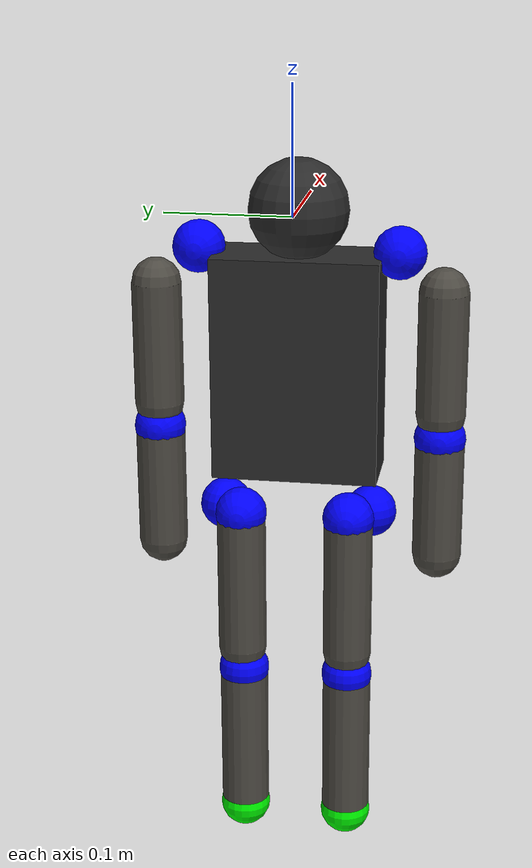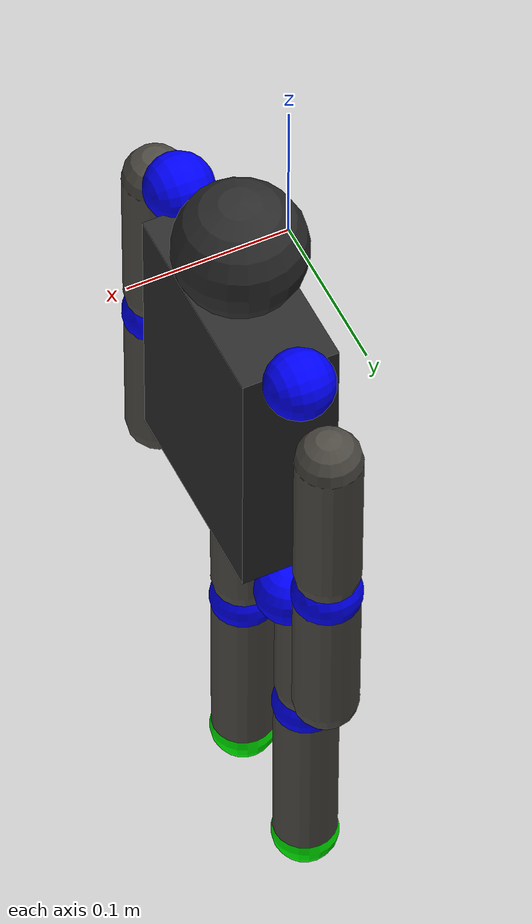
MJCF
<mujoco model="onshape">
  <compiler angle="radian"/>
  <worldbody>
    <!-- CUSTOM -->
    <body name="humanoid" pos="0 0 -0.175" quat="1 0 0 0">
      <joint solreflimit="4e-3 1" solimplimit=".95 .99 1e-3" range="-1.5708 1.5708" limited="true" name="humanoid_free" type="free"/>
      <!-- CUSTOM -->
      <body name="torso" pos="0 0 0" quat="1 0 0 0">
        <geom size="0.04" pos="0.03 0 0.175" quat="1 0 0 0" type="sphere" rgba="0.168627 0.168627 0.168627 1" contype="0"/>
        <geom size="0.0665 0.09 0.03" pos="0.03 0 0.05" quat="0.499998 0.5 0.500002 0.5" type="box" rgba="0.168627 0.168627 0.168627 1"/>
      </body>
      <body name="shoulder_right" pos="0.030869 -0.0795 0.143" quat="9.38184e-07 9.38187e-07 0.707108 0.707105">
        <inertial pos="0 -0.00566234 -0.0159676" quat="0.627076 0.326766 0.627076 0.326766" mass="0.0570101" diaginertia="4.46e-05 3.15943e-05 2.21758e-05"/>
        <joint solreflimit="4e-3 1" solimplimit=".95 .99 1e-3" range="-1.5708 1.5708" limited="true" name="right_shoulder_pitch" pos="0 0 0" axis="0 0 1"/>
        <joint solreflimit="4e-3 1" solimplimit=".95 .99 1e-3" range="-0.785398 0.785398" limited="true" name="right_shoulder_roll" pos="0 0 0" axis="-1 0 0"/>
        <geom size="0.021" pos="0 0 0" quat="0.5 0.5 0.5 0.5" type="sphere" rgba="0 0 1 1" contype="0"/>
        <body name="bicep_right" pos="-0.0235 -0.03 -0.035" quat="0.707105 0 -0.707108 0">
          <inertial pos="-0.0219502 0.0714677 -0.0108756" quat="0.656406 0.694267 0.257251 -0.144731" mass="0.111948" diaginertia="0.0135499 0.013546 4.41839e-05"/>
          <geom size="0.02 0.05" pos="0 -0.05 -0.025" quat="0.5 0.5 -0.5 0.5" type="capsule" rgba="0.301961 0.290196 0.262745 1"/>
          <body name="forearm_right" pos="0 -0.12 -0.025" quat="9.38184e-07 0.707105 -9.38187e-07 0.707108">
            <inertial pos="-0.0555551 -0.0926698 0.0242347" quat="0.543825 0.387752 -0.593435 0.449152" mass="0.133609" diaginertia="0.0229283 0.0228827 0.000121774"/>
            <joint solreflimit="4e-3 1" solimplimit=".95 .99 1e-3" range="-1.5708 0" limited="true" name="right_elbow" pos="0 0 0" axis="0 0 1"/>
            <geom size="0.021" pos="0 0 0" quat="0.5 0.5 0.5 0.5" type="sphere" rgba="0 0 1 1" contype="0"/>
            <geom size="0.02 0.05" pos="0 0.05 0" quat="0.5 0.5 -0.5 0.5" type="capsule" rgba="0.301961 0.290196 0.262745 1"/>
          </body>
        </body>
      </body>
      <body name="shoulder_left" pos="0.030869 0.0795 0.143" quat="0.707105 -0.707108 0 0">
        <inertial pos="0 0.00566234 0.0159676" quat="0.627076 0.326766 0.627076 0.326766" mass="0.0570101" diaginertia="4.46e-05 3.15943e-05 2.21758e-05"/>
        <joint solreflimit="4e-3 1" solimplimit=".95 .99 1e-3" range="-1.5708 1.5708" limited="true" name="left_shoulder_pitch" pos="0 0 0" axis="0 0 1"/>
        <joint solreflimit="4e-3 1" solimplimit=".95 .99 1e-3" range="-0.785398 0.785398" limited="true" name="left_shoulder_roll" pos="0 0 0" axis="1 0 0"/>
        <geom size="0.021" pos="0 0 0" quat="0.5 0.5 0.5 0.5" type="sphere" rgba="0 0 1 1" contype="0"/>
        <body name="bicep_left" pos="0.0235 0.03 0.035" quat="9.38184e-07 -0.707105 -9.38187e-07 -0.707108">
          <inertial pos="-0.0663577 0.040272 -0.0134765" quat="0.415543 0.655163 -0.341623 0.530451" mass="0.111948" diaginertia="0.0108012 0.0107658 7.7764e-05"/>
          <geom size="0.02 0.05" pos="0 -0.05 -0.025" quat="0.5 0.5 -0.5 0.5" type="capsule" rgba="0.301961 0.290196 0.262745 1"/>
          <body name="forearm_left" pos="0 -0.12 -0.025" quat="0.707105 0 0.707108 0">
            <inertial pos="0.0700592 0.094197 -0.0524277" quat="0.646612 0.400761 -0.519226 0.389471" mass="0.133609" diaginertia="0.0249685 0.0249115 0.000133694"/>
            <joint solreflimit="4e-3 1" solimplimit=".95 .99 1e-3" range="-1.5708 0" limited="true" name="left_elbow" pos="0 0 0" axis="0 0 1"/>
            <geom size="0.021" pos="0 0 0" quat="0.5 0.5 0.5 0.5" type="sphere" rgba="0 0 1 1" contype="0"/>
            <geom size="0.02 0.05" pos="0 -0.05 0" quat="0.5 0.5 -0.5 0.5" type="capsule" rgba="0.301961 0.290196 0.262745 1"/>
          </body>
        </body>
      </body>
      <body name="pelvis" pos="0.00086897 0 0.03" quat="1 0 0 0">
        <inertial pos="-6.06619e-11 0.00126178 -0.0329138" quat="0.996166 -0.0435756 0.000376242 0.0758634" mass="0.00001" diaginertia="0.000103375 8.60215e-05 6.43987e-05"/>
        <body name="pelvis_left" pos="0.00586897 0.06 -0.0411" quat="0.707105 0 0 0.707108">
          <inertial pos="-6.06619e-11 0.00126178 -0.0329138" quat="0.996166 -0.0435756 0.000376242 0.0758634" mass="0.136031" diaginertia="0.000103375 8.60215e-05 6.43987e-05"/>
          <body name="hip_left" pos="0 -0.0200991 -0.0604" quat="0.499998 0.5 -0.5 0.500002">
            <inertial pos="-0.016034 -0.00248551 -0.0424236" quat="0.715028 0.072692 0.00874476 0.695251" mass="0.136461" diaginertia="0.000156441 0.000137709 7.28591e-05"/>
            <joint solreflimit="4e-3 1" solimplimit=".95 .99 1e-3" range="-1.5708 1.5708" limited="true" name="left_hip_roll" pos="0 0 0" axis="0 0 1"/>
            <geom size="0.021" pos="0 0 0" quat="0.5 0.5 0.5 0.5" type="sphere" rgba="0 0 1 1" contype="0"/>
            <body name="thigh_left" pos="0 0.016 -0.0201" quat="0.499998 0.5 -0.5 0.500002">
              <inertial pos="-9.36074e-05 0.0868627 0.0156903" quat="0.647079 0.762423 0.000165102 -8.89325e-05" mass="0.0845547" diaginertia="0.000327329 0.000313403 2.868e-05"/>
              <joint solreflimit="4e-3 1" solimplimit=".95 .99 1e-3" range="-1.5708 1.5708" limited="true" name="left_hip_pitch" pos="0 0 0" axis="0 0 1"/>
              <geom size="0.021" pos="0 0 0" quat="0.5 0.5 0.5 0.5" type="sphere" rgba="0 0 1 1" contype="0"/>
              <geom size="0.02 0.06" pos="0 0.06 0" quat="0.5 0.5 -0.5 0.5" type="capsule" rgba="0.301961 0.290196 0.262745 1"/>
              <body name="tibia_left" pos="0 0.14 -0.001" quat="0.707105 0 0 -0.707108">
                <inertial pos="-0.07 0 0.00139217" quat="0.5 0.5 0.5 0.5" mass="0.0501468" diaginertia="0.000261996 0.000247771 1.66507e-05"/>
                <joint solreflimit="4e-3 1" solimplimit=".95 .99 1e-3" range="0 1.5708" limited="true" name="left_knee" pos="0 0 0" axis="0 0 1"/>
                <geom size="0.021" pos="0 0 0" quat="0.5 0.5 0.5 0.5" type="sphere" rgba="0 0 1 1" contype="0"/>
                <geom size="0.02 0.065" pos="-0.065 0 0" quat="0.5 0.5 0.5 0.5" type="capsule" rgba="0.301961 0.290196 0.262745 1"/>
                <geom name="pressure_geom_L" size="0.021" pos="-0.13 0 0" quat="0.5 0.5 0.5 0.5" type="sphere" rgba="0 1 0 1" contype="1"/>
              </body>
            </body>
          </body>
        </body>
        <body name="pelvis_right" pos="0.00586897 -0.06 -0.0411" quat="0.707105 0 0 0.707108">
          <inertial pos="-6.06622e-11 0.00126178 -0.0329138" quat="0.996166 -0.0435756 0.000376242 0.0758634" mass="0.136031" diaginertia="0.000103375 8.60215e-05 6.43987e-05"/>
          <body name="hip_right" pos="0 -0.0200991 -0.0604" quat="0.499998 0.5 -0.5 0.500002">
            <inertial pos="-0.0157981 0.00247927 -0.0424173" quat="0.694539 0.00867748 0.0728169 0.715708" mass="0.136461" diaginertia="0.000156478 0.000137759 7.28574e-05"/>
            <joint solreflimit="4e-3 1" solimplimit=".95 .99 1e-3" range="-1.5708 1.5708" limited="true" name="right_hip_roll" pos="0 0 0" axis="0 0 1"/>
            <geom size="0.021" pos="0 0 0" quat="0.5 0.5 0.5 0.5" type="sphere" rgba="0 0 1 1" contype="0"/>
            <body name="thigh_right" pos="0.000235943 -0.016 -0.0201" quat="0.499998 0.5 -0.5 0.500002">
              <inertial pos="-0.000103673 0.0868627 -0.0156903" quat="0.762364 0.647148 3.09413e-05 8.56301e-05" mass="0.0845547" diaginertia="0.000327329 0.000313384 2.86975e-05"/>
              <joint solreflimit="4e-3 1" solimplimit=".95 .99 1e-3" range="-1.5708 1.5708" limited="true" name="right_hip_pitch" pos="0 0 0" axis="0 0 1"/>
              <geom size="0.021" pos="0 0 0" quat="0.5 0.5 0.5 0.5" type="sphere" rgba="0 0 1 1" contype="0"/>
              <geom size="0.02 0.06" pos="0 0.06 0" quat="0.5 0.5 -0.5 0.5" type="capsule" rgba="0.301961 0.290196 0.262745 1"/>
              <body name="tibia_right" pos="0 0.14 0" quat="0.707105 0 0 -0.707108">
                <inertial pos="-0.07 0 -0.00139217" quat="0.5 0.5 0.5 0.5" mass="0.0501468" diaginertia="0.000261996 0.000247771 1.66507e-05"/>
                <joint solreflimit="4e-3 1" solimplimit=".95 .99 1e-3" range="0 1.5708" limited="true" name="right_knee" pos="0 0 0" axis="0 0 1"/>
                <geom size="0.021" pos="0 0 0" quat="0.5 0.5 0.5 0.5" type="sphere" rgba="0 0 1 1" contype="0"/>
                <geom size="0.02 0.065" pos="-0.065 0 0" quat="0.5 0.5 0.5 0.5" type="capsule" rgba="0.301961 0.290196 0.262745 1"/>
                <geom name="pressure_geom_R" size="0.021" pos="-0.13 0 0" quat="0.5 0.5 0.5 0.5" type="sphere" rgba="0 1 0 1" contype="1"/>
              </body>
            </body>
          </body>
        </body>
      </body>
    </body>
  </worldbody>

  <!-- CUSTOM -->
  <actuator>
    <position name="right_shoulder_pitch" joint="right_shoulder_pitch" forcelimited="true" forcerange="-1.5 1.5" kp="100" kv="10"/>
    <position name="right_shoulder_roll" joint="right_shoulder_roll" forcelimited="true" forcerange="-1.5 1.5" kp="100" kv="10"/>
    <position name="right_elbow" joint="right_elbow" forcelimited="true" forcerange="-1.5 1.5" kp="100" kv="10"/>
    <position name="left_shoulder_pitch" joint="left_shoulder_pitch" forcelimited="true" forcerange="-1.5 1.5" kp="100" kv="10"/>
    <position name="left_shoulder_roll" joint="left_shoulder_roll" forcelimited="true" forcerange="-1.5 1.5" kp="100" kv="10"/>
    <position name="left_elbow" joint="left_elbow" forcelimited="true" forcerange="-1.5 1.5" kp="100" kv="10"/>
    <position name="left_hip_roll" joint="left_hip_roll" forcelimited="true" forcerange="-1.5 1.5" kp="100" kv="10"/>
    <position name="left_hip_pitch" joint="left_hip_pitch" forcelimited="true" forcerange="-1.5 1.5" kp="100" kv="10"/>
    <position name="left_knee" joint="left_knee" forcelimited="true" forcerange="-1.5 1.5" kp="100" kv="10"/>
    <position name="right_hip_roll" joint="right_hip_roll" forcelimited="true" forcerange="-1.5 1.5" kp="100" kv="10"/>
    <position name="right_hip_pitch" joint="right_hip_pitch" forcelimited="true" forcerange="-1.5 1.5" kp="100" kv="10"/>
    <position name="right_knee" joint="right_knee" forcelimited="true" forcerange="-1.5 1.5" kp="100" kv="10"/>
  </actuator>

  <!-- CUSTOM -->
  <!-- MAKE SURE ALL CYLINDERS ARE CAPSULES (CTRL-F + CTRL-H) TO MAKE COMPATIBLE WITH JAX -->
  <!-- CUSTOM -->
</mujoco>
